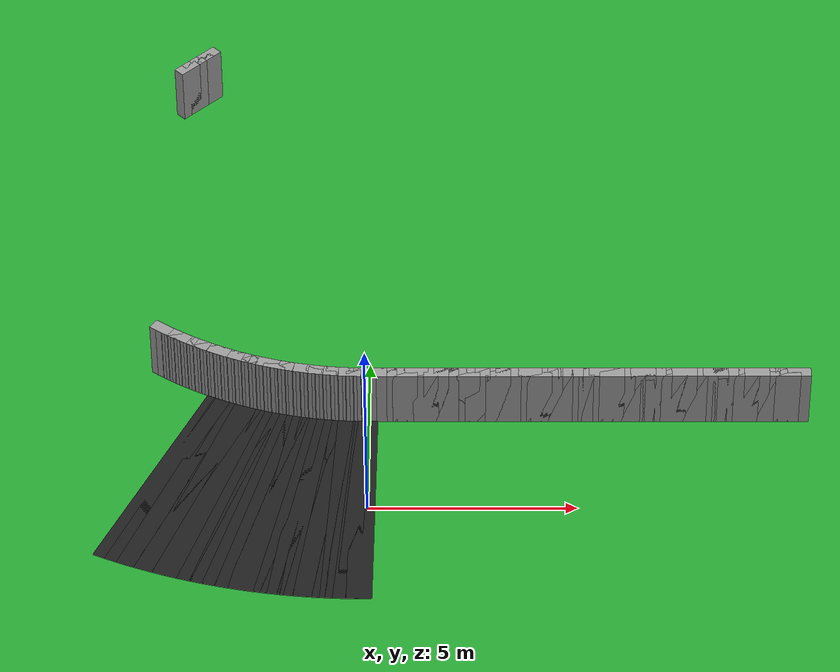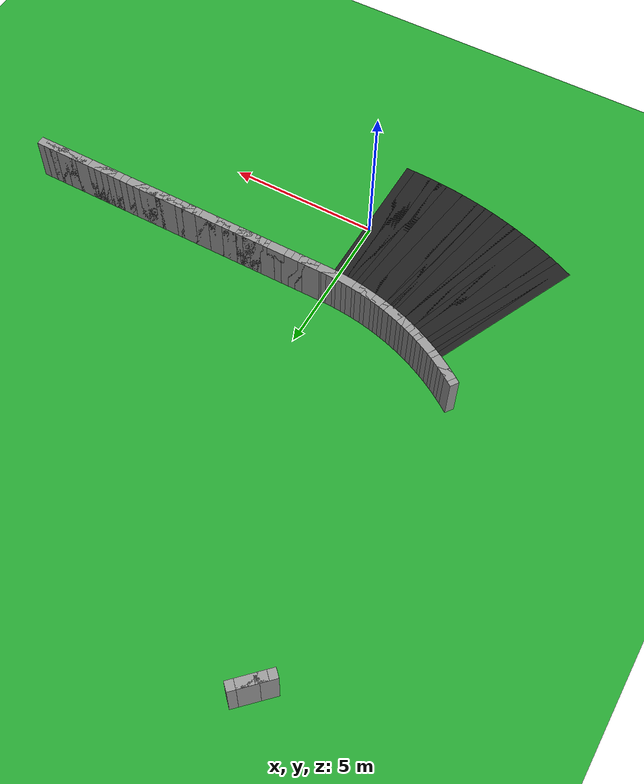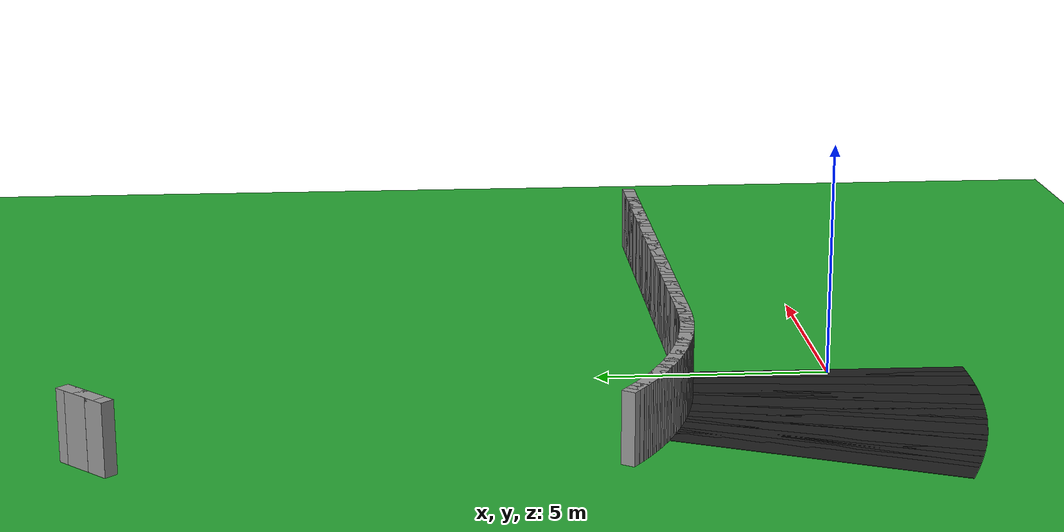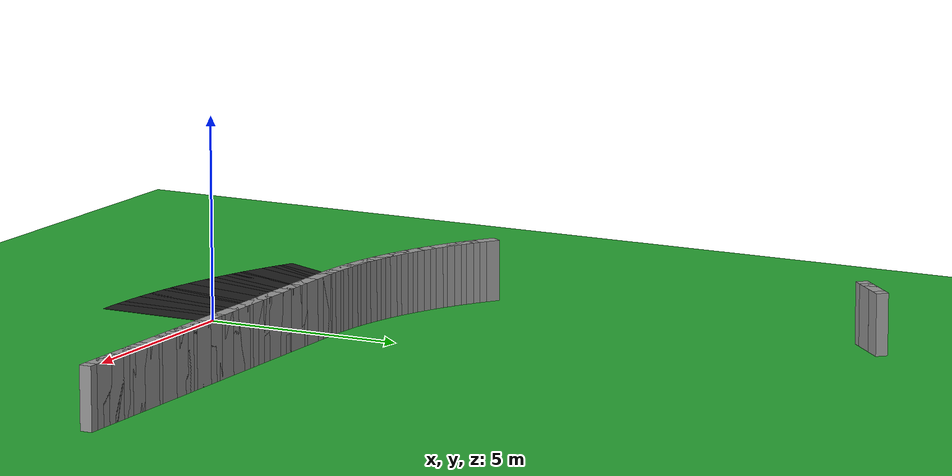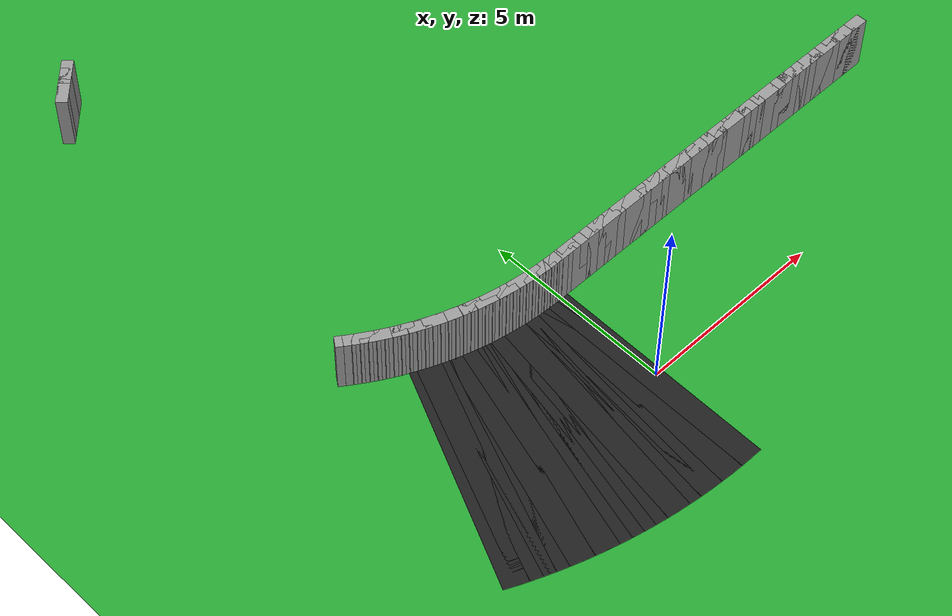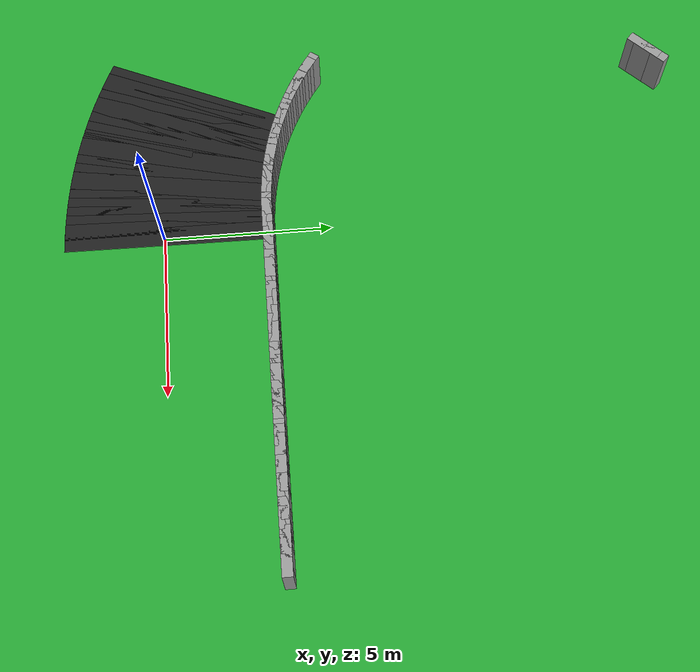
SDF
<sdf version="1.6">
 <world name="obstacle_asymturn">
  <include><uri>model://sun</uri></include>
  <model name="ground_plane">
   <static>true</static>
   <link name="link">
    <collision name="collision">
     <surface><friction><ode><mu>100</mu><mu2>50</mu2></ode></friction></surface>
     <geometry><plane><normal>0 0 1</normal><size>120 120</size></plane></geometry>
    </collision>
    <visual name="visual">
     <geometry><plane><normal>0 0 1</normal><size>120 120</size></plane></geometry>
     <material>
      <script><uri>file://media/materials/scripts/gazebo.material</uri><name>Gazebo/Green</name></script>
     </material>
    </visual>
   </link>
  </model>
  <model name="curbL_0">
   <static>true</static>
   <pose>0.125 3.150 0.750 0 0 0.00000</pose>
   <link name="link">
    <collision name="collision"><geometry><box><size>0.610 0.300 1.500</size></box></geometry></collision>
    <visual name="visual">
     <geometry><box><size>0.610 0.300 1.500</size></box></geometry>
     <material>
      <script><uri>file://media/materials/scripts/gazebo.material</uri><name>Gazebo/Grey</name></script>
     </material>
    </visual>
   </link>
  </model>
  <model name="curbL_1">
   <static>true</static>
   <pose>0.375 3.150 0.750 0 0 0.00000</pose>
   <link name="link">
    <collision name="collision"><geometry><box><size>0.610 0.300 1.500</size></box></geometry></collision>
    <visual name="visual">
     <geometry><box><size>0.610 0.300 1.500</size></box></geometry>
     <material>
      <script><uri>file://media/materials/scripts/gazebo.material</uri><name>Gazebo/Grey</name></script>
     </material>
    </visual>
   </link>
  </model>
  <model name="curbL_2">
   <static>true</static>
   <pose>0.625 3.150 0.750 0 0 0.00000</pose>
   <link name="link">
    <collision name="collision"><geometry><box><size>0.610 0.300 1.500</size></box></geometry></collision>
    <visual name="visual">
     <geometry><box><size>0.610 0.300 1.500</size></box></geometry>
     <material>
      <script><uri>file://media/materials/scripts/gazebo.material</uri><name>Gazebo/Grey</name></script>
     </material>
    </visual>
   </link>
  </model>
  <model name="curbL_3">
   <static>true</static>
   <pose>0.875 3.150 0.750 0 0 0.00000</pose>
   <link name="link">
    <collision name="collision"><geometry><box><size>0.610 0.300 1.500</size></box></geometry></collision>
    <visual name="visual">
     <geometry><box><size>0.610 0.300 1.500</size></box></geometry>
     <material>
      <script><uri>file://media/materials/scripts/gazebo.material</uri><name>Gazebo/Grey</name></script>
     </material>
    </visual>
   </link>
  </model>
  <model name="curbL_4">
   <static>true</static>
   <pose>1.125 3.150 0.750 0 0 0.00000</pose>
   <link name="link">
    <collision name="collision"><geometry><box><size>0.610 0.300 1.500</size></box></geometry></collision>
    <visual name="visual">
     <geometry><box><size>0.610 0.300 1.500</size></box></geometry>
     <material>
      <script><uri>file://media/materials/scripts/gazebo.material</uri><name>Gazebo/Grey</name></script>
     </material>
    </visual>
   </link>
  </model>
  <model name="curbL_5">
   <static>true</static>
   <pose>1.375 3.150 0.750 0 0 0.00000</pose>
   <link name="link">
    <collision name="collision"><geometry><box><size>0.610 0.300 1.500</size></box></geometry></collision>
    <visual name="visual">
     <geometry><box><size>0.610 0.300 1.500</size></box></geometry>
     <material>
      <script><uri>file://media/materials/scripts/gazebo.material</uri><name>Gazebo/Grey</name></script>
     </material>
    </visual>
   </link>
  </model>
  <model name="curbL_6">
   <static>true</static>
   <pose>1.625 3.150 0.750 0 0 0.00000</pose>
   <link name="link">
    <collision name="collision"><geometry><box><size>0.610 0.300 1.500</size></box></geometry></collision>
    <visual name="visual">
     <geometry><box><size>0.610 0.300 1.500</size></box></geometry>
     <material>
      <script><uri>file://media/materials/scripts/gazebo.material</uri><name>Gazebo/Grey</name></script>
     </material>
    </visual>
   </link>
  </model>
  <model name="curbL_7">
   <static>true</static>
   <pose>1.875 3.150 0.750 0 0 0.00000</pose>
   <link name="link">
    <collision name="collision"><geometry><box><size>0.610 0.300 1.500</size></box></geometry></collision>
    <visual name="visual">
     <geometry><box><size>0.610 0.300 1.500</size></box></geometry>
     <material>
      <script><uri>file://media/materials/scripts/gazebo.material</uri><name>Gazebo/Grey</name></script>
     </material>
    </visual>
   </link>
  </model>
  <model name="curbL_8">
   <static>true</static>
   <pose>2.125 3.150 0.750 0 0 0.00000</pose>
   <link name="link">
    <collision name="collision"><geometry><box><size>0.610 0.300 1.500</size></box></geometry></collision>
    <visual name="visual">
     <geometry><box><size>0.610 0.300 1.500</size></box></geometry>
     <material>
      <script><uri>file://media/materials/scripts/gazebo.material</uri><name>Gazebo/Grey</name></script>
     </material>
    </visual>
   </link>
  </model>
  <model name="curbL_9">
   <static>true</static>
   <pose>2.375 3.150 0.750 0 0 0.00000</pose>
   <link name="link">
    <collision name="collision"><geometry><box><size>0.610 0.300 1.500</size></box></geometry></collision>
    <visual name="visual">
     <geometry><box><size>0.610 0.300 1.500</size></box></geometry>
     <material>
      <script><uri>file://media/materials/scripts/gazebo.material</uri><name>Gazebo/Grey</name></script>
     </material>
    </visual>
   </link>
  </model>
  <model name="curbL_10">
   <static>true</static>
   <pose>2.625 3.150 0.750 0 0 0.00000</pose>
   <link name="link">
    <collision name="collision"><geometry><box><size>0.610 0.300 1.500</size></box></geometry></collision>
    <visual name="visual">
     <geometry><box><size>0.610 0.300 1.500</size></box></geometry>
     <material>
      <script><uri>file://media/materials/scripts/gazebo.material</uri><name>Gazebo/Grey</name></script>
     </material>
    </visual>
   </link>
  </model>
  <model name="curbL_11">
   <static>true</static>
   <pose>2.875 3.150 0.750 0 0 0.00000</pose>
   <link name="link">
    <collision name="collision"><geometry><box><size>0.610 0.300 1.500</size></box></geometry></collision>
    <visual name="visual">
     <geometry><box><size>0.610 0.300 1.500</size></box></geometry>
     <material>
      <script><uri>file://media/materials/scripts/gazebo.material</uri><name>Gazebo/Grey</name></script>
     </material>
    </visual>
   </link>
  </model>
  <model name="curbL_12">
   <static>true</static>
   <pose>3.125 3.150 0.750 0 0 0.00000</pose>
   <link name="link">
    <collision name="collision"><geometry><box><size>0.610 0.300 1.500</size></box></geometry></collision>
    <visual name="visual">
     <geometry><box><size>0.610 0.300 1.500</size></box></geometry>
     <material>
      <script><uri>file://media/materials/scripts/gazebo.material</uri><name>Gazebo/Grey</name></script>
     </material>
    </visual>
   </link>
  </model>
  <model name="curbL_13">
   <static>true</static>
   <pose>3.375 3.150 0.750 0 0 0.00000</pose>
   <link name="link">
    <collision name="collision"><geometry><box><size>0.610 0.300 1.500</size></box></geometry></collision>
    <visual name="visual">
     <geometry><box><size>0.610 0.300 1.500</size></box></geometry>
     <material>
      <script><uri>file://media/materials/scripts/gazebo.material</uri><name>Gazebo/Grey</name></script>
     </material>
    </visual>
   </link>
  </model>
  <model name="curbL_14">
   <static>true</static>
   <pose>3.625 3.150 0.750 0 0 0.00000</pose>
   <link name="link">
    <collision name="collision"><geometry><box><size>0.610 0.300 1.500</size></box></geometry></collision>
    <visual name="visual">
     <geometry><box><size>0.610 0.300 1.500</size></box></geometry>
     <material>
      <script><uri>file://media/materials/scripts/gazebo.material</uri><name>Gazebo/Grey</name></script>
     </material>
    </visual>
   </link>
  </model>
  <model name="curbL_15">
   <static>true</static>
   <pose>3.875 3.150 0.750 0 0 0.00000</pose>
   <link name="link">
    <collision name="collision"><geometry><box><size>0.610 0.300 1.500</size></box></geometry></collision>
    <visual name="visual">
     <geometry><box><size>0.610 0.300 1.500</size></box></geometry>
     <material>
      <script><uri>file://media/materials/scripts/gazebo.material</uri><name>Gazebo/Grey</name></script>
     </material>
    </visual>
   </link>
  </model>
  <model name="curbL_16">
   <static>true</static>
   <pose>4.125 3.150 0.750 0 0 0.00000</pose>
   <link name="link">
    <collision name="collision"><geometry><box><size>0.610 0.300 1.500</size></box></geometry></collision>
    <visual name="visual">
     <geometry><box><size>0.610 0.300 1.500</size></box></geometry>
     <material>
      <script><uri>file://media/materials/scripts/gazebo.material</uri><name>Gazebo/Grey</name></script>
     </material>
    </visual>
   </link>
  </model>
  <model name="curbL_17">
   <static>true</static>
   <pose>4.375 3.150 0.750 0 0 0.00000</pose>
   <link name="link">
    <collision name="collision"><geometry><box><size>0.610 0.300 1.500</size></box></geometry></collision>
    <visual name="visual">
     <geometry><box><size>0.610 0.300 1.500</size></box></geometry>
     <material>
      <script><uri>file://media/materials/scripts/gazebo.material</uri><name>Gazebo/Grey</name></script>
     </material>
    </visual>
   </link>
  </model>
  <model name="curbL_18">
   <static>true</static>
   <pose>4.625 3.150 0.750 0 0 0.00000</pose>
   <link name="link">
    <collision name="collision"><geometry><box><size>0.610 0.300 1.500</size></box></geometry></collision>
    <visual name="visual">
     <geometry><box><size>0.610 0.300 1.500</size></box></geometry>
     <material>
      <script><uri>file://media/materials/scripts/gazebo.material</uri><name>Gazebo/Grey</name></script>
     </material>
    </visual>
   </link>
  </model>
  <model name="curbL_19">
   <static>true</static>
   <pose>4.875 3.150 0.750 0 0 0.00000</pose>
   <link name="link">
    <collision name="collision"><geometry><box><size>0.610 0.300 1.500</size></box></geometry></collision>
    <visual name="visual">
     <geometry><box><size>0.610 0.300 1.500</size></box></geometry>
     <material>
      <script><uri>file://media/materials/scripts/gazebo.material</uri><name>Gazebo/Grey</name></script>
     </material>
    </visual>
   </link>
  </model>
  <model name="curbL_20">
   <static>true</static>
   <pose>5.125 3.150 0.750 0 0 0.00000</pose>
   <link name="link">
    <collision name="collision"><geometry><box><size>0.610 0.300 1.500</size></box></geometry></collision>
    <visual name="visual">
     <geometry><box><size>0.610 0.300 1.500</size></box></geometry>
     <material>
      <script><uri>file://media/materials/scripts/gazebo.material</uri><name>Gazebo/Grey</name></script>
     </material>
    </visual>
   </link>
  </model>
  <model name="curbL_21">
   <static>true</static>
   <pose>5.375 3.150 0.750 0 0 0.00000</pose>
   <link name="link">
    <collision name="collision"><geometry><box><size>0.610 0.300 1.500</size></box></geometry></collision>
    <visual name="visual">
     <geometry><box><size>0.610 0.300 1.500</size></box></geometry>
     <material>
      <script><uri>file://media/materials/scripts/gazebo.material</uri><name>Gazebo/Grey</name></script>
     </material>
    </visual>
   </link>
  </model>
  <model name="curbL_22">
   <static>true</static>
   <pose>5.625 3.150 0.750 0 0 0.00000</pose>
   <link name="link">
    <collision name="collision"><geometry><box><size>0.610 0.300 1.500</size></box></geometry></collision>
    <visual name="visual">
     <geometry><box><size>0.610 0.300 1.500</size></box></geometry>
     <material>
      <script><uri>file://media/materials/scripts/gazebo.material</uri><name>Gazebo/Grey</name></script>
     </material>
    </visual>
   </link>
  </model>
  <model name="curbL_23">
   <static>true</static>
   <pose>5.875 3.150 0.750 0 0 0.00000</pose>
   <link name="link">
    <collision name="collision"><geometry><box><size>0.610 0.300 1.500</size></box></geometry></collision>
    <visual name="visual">
     <geometry><box><size>0.610 0.300 1.500</size></box></geometry>
     <material>
      <script><uri>file://media/materials/scripts/gazebo.material</uri><name>Gazebo/Grey</name></script>
     </material>
    </visual>
   </link>
  </model>
  <model name="curbL_24">
   <static>true</static>
   <pose>6.125 3.150 0.750 0 0 0.00000</pose>
   <link name="link">
    <collision name="collision"><geometry><box><size>0.610 0.300 1.500</size></box></geometry></collision>
    <visual name="visual">
     <geometry><box><size>0.610 0.300 1.500</size></box></geometry>
     <material>
      <script><uri>file://media/materials/scripts/gazebo.material</uri><name>Gazebo/Grey</name></script>
     </material>
    </visual>
   </link>
  </model>
  <model name="curbL_25">
   <static>true</static>
   <pose>6.375 3.150 0.750 0 0 0.00000</pose>
   <link name="link">
    <collision name="collision"><geometry><box><size>0.610 0.300 1.500</size></box></geometry></collision>
    <visual name="visual">
     <geometry><box><size>0.610 0.300 1.500</size></box></geometry>
     <material>
      <script><uri>file://media/materials/scripts/gazebo.material</uri><name>Gazebo/Grey</name></script>
     </material>
    </visual>
   </link>
  </model>
  <model name="curbL_26">
   <static>true</static>
   <pose>6.625 3.150 0.750 0 0 0.00000</pose>
   <link name="link">
    <collision name="collision"><geometry><box><size>0.610 0.300 1.500</size></box></geometry></collision>
    <visual name="visual">
     <geometry><box><size>0.610 0.300 1.500</size></box></geometry>
     <material>
      <script><uri>file://media/materials/scripts/gazebo.material</uri><name>Gazebo/Grey</name></script>
     </material>
    </visual>
   </link>
  </model>
  <model name="curbL_27">
   <static>true</static>
   <pose>6.875 3.150 0.750 0 0 0.00000</pose>
   <link name="link">
    <collision name="collision"><geometry><box><size>0.610 0.300 1.500</size></box></geometry></collision>
    <visual name="visual">
     <geometry><box><size>0.610 0.300 1.500</size></box></geometry>
     <material>
      <script><uri>file://media/materials/scripts/gazebo.material</uri><name>Gazebo/Grey</name></script>
     </material>
    </visual>
   </link>
  </model>
  <model name="curbL_28">
   <static>true</static>
   <pose>7.125 3.150 0.750 0 0 0.00000</pose>
   <link name="link">
    <collision name="collision"><geometry><box><size>0.610 0.300 1.500</size></box></geometry></collision>
    <visual name="visual">
     <geometry><box><size>0.610 0.300 1.500</size></box></geometry>
     <material>
      <script><uri>file://media/materials/scripts/gazebo.material</uri><name>Gazebo/Grey</name></script>
     </material>
    </visual>
   </link>
  </model>
  <model name="curbL_29">
   <static>true</static>
   <pose>7.375 3.150 0.750 0 0 0.00000</pose>
   <link name="link">
    <collision name="collision"><geometry><box><size>0.610 0.300 1.500</size></box></geometry></collision>
    <visual name="visual">
     <geometry><box><size>0.610 0.300 1.500</size></box></geometry>
     <material>
      <script><uri>file://media/materials/scripts/gazebo.material</uri><name>Gazebo/Grey</name></script>
     </material>
    </visual>
   </link>
  </model>
  <model name="curbL_30">
   <static>true</static>
   <pose>7.625 3.150 0.750 0 0 0.00000</pose>
   <link name="link">
    <collision name="collision"><geometry><box><size>0.610 0.300 1.500</size></box></geometry></collision>
    <visual name="visual">
     <geometry><box><size>0.610 0.300 1.500</size></box></geometry>
     <material>
      <script><uri>file://media/materials/scripts/gazebo.material</uri><name>Gazebo/Grey</name></script>
     </material>
    </visual>
   </link>
  </model>
  <model name="curbL_31">
   <static>true</static>
   <pose>7.875 3.150 0.750 0 0 0.00000</pose>
   <link name="link">
    <collision name="collision"><geometry><box><size>0.610 0.300 1.500</size></box></geometry></collision>
    <visual name="visual">
     <geometry><box><size>0.610 0.300 1.500</size></box></geometry>
     <material>
      <script><uri>file://media/materials/scripts/gazebo.material</uri><name>Gazebo/Grey</name></script>
     </material>
    </visual>
   </link>
  </model>
  <model name="curbL_32">
   <static>true</static>
   <pose>8.125 3.150 0.750 0 0 0.00000</pose>
   <link name="link">
    <collision name="collision"><geometry><box><size>0.610 0.300 1.500</size></box></geometry></collision>
    <visual name="visual">
     <geometry><box><size>0.610 0.300 1.500</size></box></geometry>
     <material>
      <script><uri>file://media/materials/scripts/gazebo.material</uri><name>Gazebo/Grey</name></script>
     </material>
    </visual>
   </link>
  </model>
  <model name="curbL_33">
   <static>true</static>
   <pose>8.375 3.150 0.750 0 0 0.00000</pose>
   <link name="link">
    <collision name="collision"><geometry><box><size>0.610 0.300 1.500</size></box></geometry></collision>
    <visual name="visual">
     <geometry><box><size>0.610 0.300 1.500</size></box></geometry>
     <material>
      <script><uri>file://media/materials/scripts/gazebo.material</uri><name>Gazebo/Grey</name></script>
     </material>
    </visual>
   </link>
  </model>
  <model name="curbL_34">
   <static>true</static>
   <pose>8.625 3.150 0.750 0 0 0.00000</pose>
   <link name="link">
    <collision name="collision"><geometry><box><size>0.610 0.300 1.500</size></box></geometry></collision>
    <visual name="visual">
     <geometry><box><size>0.610 0.300 1.500</size></box></geometry>
     <material>
      <script><uri>file://media/materials/scripts/gazebo.material</uri><name>Gazebo/Grey</name></script>
     </material>
    </visual>
   </link>
  </model>
  <model name="curbL_35">
   <static>true</static>
   <pose>8.875 3.150 0.750 0 0 0.00000</pose>
   <link name="link">
    <collision name="collision"><geometry><box><size>0.610 0.300 1.500</size></box></geometry></collision>
    <visual name="visual">
     <geometry><box><size>0.610 0.300 1.500</size></box></geometry>
     <material>
      <script><uri>file://media/materials/scripts/gazebo.material</uri><name>Gazebo/Grey</name></script>
     </material>
    </visual>
   </link>
  </model>
  <model name="curbL_36">
   <static>true</static>
   <pose>9.125 3.150 0.750 0 0 0.00000</pose>
   <link name="link">
    <collision name="collision"><geometry><box><size>0.610 0.300 1.500</size></box></geometry></collision>
    <visual name="visual">
     <geometry><box><size>0.610 0.300 1.500</size></box></geometry>
     <material>
      <script><uri>file://media/materials/scripts/gazebo.material</uri><name>Gazebo/Grey</name></script>
     </material>
    </visual>
   </link>
  </model>
  <model name="curbL_37">
   <static>true</static>
   <pose>9.375 3.150 0.750 0 0 0.00000</pose>
   <link name="link">
    <collision name="collision"><geometry><box><size>0.610 0.300 1.500</size></box></geometry></collision>
    <visual name="visual">
     <geometry><box><size>0.610 0.300 1.500</size></box></geometry>
     <material>
      <script><uri>file://media/materials/scripts/gazebo.material</uri><name>Gazebo/Grey</name></script>
     </material>
    </visual>
   </link>
  </model>
  <model name="curbL_38">
   <static>true</static>
   <pose>9.625 3.150 0.750 0 0 0.00000</pose>
   <link name="link">
    <collision name="collision"><geometry><box><size>0.610 0.300 1.500</size></box></geometry></collision>
    <visual name="visual">
     <geometry><box><size>0.610 0.300 1.500</size></box></geometry>
     <material>
      <script><uri>file://media/materials/scripts/gazebo.material</uri><name>Gazebo/Grey</name></script>
     </material>
    </visual>
   </link>
  </model>
  <model name="curbL_39">
   <static>true</static>
   <pose>9.875 3.150 0.750 0 0 0.00000</pose>
   <link name="link">
    <collision name="collision"><geometry><box><size>0.610 0.300 1.500</size></box></geometry></collision>
    <visual name="visual">
     <geometry><box><size>0.610 0.300 1.500</size></box></geometry>
     <material>
      <script><uri>file://media/materials/scripts/gazebo.material</uri><name>Gazebo/Grey</name></script>
     </material>
    </visual>
   </link>
  </model>
  <model name="curbL_40">
   <static>true</static>
   <pose>10.125 3.150 0.750 0 0 0.00000</pose>
   <link name="link">
    <collision name="collision"><geometry><box><size>0.610 0.300 1.500</size></box></geometry></collision>
    <visual name="visual">
     <geometry><box><size>0.610 0.300 1.500</size></box></geometry>
     <material>
      <script><uri>file://media/materials/scripts/gazebo.material</uri><name>Gazebo/Grey</name></script>
     </material>
    </visual>
   </link>
  </model>
  <model name="curbL_41">
   <static>true</static>
   <pose>10.375 3.150 0.750 0 0 0.00000</pose>
   <link name="link">
    <collision name="collision"><geometry><box><size>0.610 0.300 1.500</size></box></geometry></collision>
    <visual name="visual">
     <geometry><box><size>0.610 0.300 1.500</size></box></geometry>
     <material>
      <script><uri>file://media/materials/scripts/gazebo.material</uri><name>Gazebo/Grey</name></script>
     </material>
    </visual>
   </link>
  </model>
  <model name="curbL_376">
   <static>true</static>
   <pose>-4.402 15.449 0.750 0 0 -2.35619</pose>
   <link name="link">
    <collision name="collision"><geometry><box><size>0.610 0.300 1.500</size></box></geometry></collision>
    <visual name="visual">
     <geometry><box><size>0.610 0.300 1.500</size></box></geometry>
     <material>
      <script><uri>file://media/materials/scripts/gazebo.material</uri><name>Gazebo/Grey</name></script>
     </material>
    </visual>
   </link>
  </model>
  <model name="curbL_377">
   <static>true</static>
   <pose>-4.579 15.272 0.750 0 0 -2.35619</pose>
   <link name="link">
    <collision name="collision"><geometry><box><size>0.610 0.300 1.500</size></box></geometry></collision>
    <visual name="visual">
     <geometry><box><size>0.610 0.300 1.500</size></box></geometry>
     <material>
      <script><uri>file://media/materials/scripts/gazebo.material</uri><name>Gazebo/Grey</name></script>
     </material>
    </visual>
   </link>
  </model>
  <model name="curbL_378">
   <static>true</static>
   <pose>-4.755 15.095 0.750 0 0 -2.35619</pose>
   <link name="link">
    <collision name="collision"><geometry><box><size>0.610 0.300 1.500</size></box></geometry></collision>
    <visual name="visual">
     <geometry><box><size>0.610 0.300 1.500</size></box></geometry>
     <material>
      <script><uri>file://media/materials/scripts/gazebo.material</uri><name>Gazebo/Grey</name></script>
     </material>
    </visual>
   </link>
  </model>
  <model name="curbL_379">
   <static>true</static>
   <pose>-4.932 14.918 0.750 0 0 -2.35619</pose>
   <link name="link">
    <collision name="collision"><geometry><box><size>0.610 0.300 1.500</size></box></geometry></collision>
    <visual name="visual">
     <geometry><box><size>0.610 0.300 1.500</size></box></geometry>
     <material>
      <script><uri>file://media/materials/scripts/gazebo.material</uri><name>Gazebo/Grey</name></script>
     </material>
    </visual>
   </link>
  </model>
  <model name="curbL_460">
   <static>true</static>
   <pose>-5.068 4.745 0.750 0 0 -0.60972</pose>
   <link name="link">
    <collision name="collision"><geometry><box><size>0.543 0.300 1.500</size></box></geometry></collision>
    <visual name="visual">
     <geometry><box><size>0.543 0.300 1.500</size></box></geometry>
     <material>
      <script><uri>file://media/materials/scripts/gazebo.material</uri><name>Gazebo/Grey</name></script>
     </material>
    </visual>
   </link>
  </model>
  <model name="curbL_461">
   <static>true</static>
   <pose>-4.917 4.642 0.750 0 0 -0.58905</pose>
   <link name="link">
    <collision name="collision"><geometry><box><size>0.543 0.300 1.500</size></box></geometry></collision>
    <visual name="visual">
     <geometry><box><size>0.543 0.300 1.500</size></box></geometry>
     <material>
      <script><uri>file://media/materials/scripts/gazebo.material</uri><name>Gazebo/Grey</name></script>
     </material>
    </visual>
   </link>
  </model>
  <model name="curbL_462">
   <static>true</static>
   <pose>-4.764 4.542 0.750 0 0 -0.56838</pose>
   <link name="link">
    <collision name="collision"><geometry><box><size>0.543 0.300 1.500</size></box></geometry></collision>
    <visual name="visual">
     <geometry><box><size>0.543 0.300 1.500</size></box></geometry>
     <material>
      <script><uri>file://media/materials/scripts/gazebo.material</uri><name>Gazebo/Grey</name></script>
     </material>
    </visual>
   </link>
  </model>
  <model name="curbL_463">
   <static>true</static>
   <pose>-4.608 4.445 0.750 0 0 -0.54771</pose>
   <link name="link">
    <collision name="collision"><geometry><box><size>0.543 0.300 1.500</size></box></geometry></collision>
    <visual name="visual">
     <geometry><box><size>0.543 0.300 1.500</size></box></geometry>
     <material>
      <script><uri>file://media/materials/scripts/gazebo.material</uri><name>Gazebo/Grey</name></script>
     </material>
    </visual>
   </link>
  </model>
  <model name="curbL_464">
   <static>true</static>
   <pose>-4.451 4.351 0.750 0 0 -0.52704</pose>
   <link name="link">
    <collision name="collision"><geometry><box><size>0.543 0.300 1.500</size></box></geometry></collision>
    <visual name="visual">
     <geometry><box><size>0.543 0.300 1.500</size></box></geometry>
     <material>
      <script><uri>file://media/materials/scripts/gazebo.material</uri><name>Gazebo/Grey</name></script>
     </material>
    </visual>
   </link>
  </model>
  <model name="curbL_465">
   <static>true</static>
   <pose>-4.292 4.261 0.750 0 0 -0.50638</pose>
   <link name="link">
    <collision name="collision"><geometry><box><size>0.543 0.300 1.500</size></box></geometry></collision>
    <visual name="visual">
     <geometry><box><size>0.543 0.300 1.500</size></box></geometry>
     <material>
      <script><uri>file://media/materials/scripts/gazebo.material</uri><name>Gazebo/Grey</name></script>
     </material>
    </visual>
   </link>
  </model>
  <model name="curbL_466">
   <static>true</static>
   <pose>-4.131 4.174 0.750 0 0 -0.48571</pose>
   <link name="link">
    <collision name="collision"><geometry><box><size>0.543 0.300 1.500</size></box></geometry></collision>
    <visual name="visual">
     <geometry><box><size>0.543 0.300 1.500</size></box></geometry>
     <material>
      <script><uri>file://media/materials/scripts/gazebo.material</uri><name>Gazebo/Grey</name></script>
     </material>
    </visual>
   </link>
  </model>
  <model name="curbL_467">
   <static>true</static>
   <pose>-3.969 4.090 0.750 0 0 -0.46504</pose>
   <link name="link">
    <collision name="collision"><geometry><box><size>0.543 0.300 1.500</size></box></geometry></collision>
    <visual name="visual">
     <geometry><box><size>0.543 0.300 1.500</size></box></geometry>
     <material>
      <script><uri>file://media/materials/scripts/gazebo.material</uri><name>Gazebo/Grey</name></script>
     </material>
    </visual>
   </link>
  </model>
  <model name="curbL_468">
   <static>true</static>
   <pose>-3.804 4.010 0.750 0 0 -0.44437</pose>
   <link name="link">
    <collision name="collision"><geometry><box><size>0.543 0.300 1.500</size></box></geometry></collision>
    <visual name="visual">
     <geometry><box><size>0.543 0.300 1.500</size></box></geometry>
     <material>
      <script><uri>file://media/materials/scripts/gazebo.material</uri><name>Gazebo/Grey</name></script>
     </material>
    </visual>
   </link>
  </model>
  <model name="asphalt_469">
   <static>true</static>
   <pose>-4.933 1.062 0.005 0 0 -0.42370</pose>
   <link name="link">
    <visual name="visual">
     <geometry><box><size>0.608 6.000 0.010</size></box></geometry>
     <material>
      <script><uri>file://media/materials/scripts/gazebo.material</uri><name>Gazebo/Black</name></script>
     </material>
    </visual>
   </link>
  </model>
  <model name="curbL_469">
   <static>true</static>
   <pose>-3.638 3.933 0.750 0 0 -0.42370</pose>
   <link name="link">
    <collision name="collision"><geometry><box><size>0.543 0.300 1.500</size></box></geometry></collision>
    <visual name="visual">
     <geometry><box><size>0.543 0.300 1.500</size></box></geometry>
     <material>
      <script><uri>file://media/materials/scripts/gazebo.material</uri><name>Gazebo/Grey</name></script>
     </material>
    </visual>
   </link>
  </model>
  <model name="asphalt_470">
   <static>true</static>
   <pose>-4.706 0.962 0.005 0 0 -0.40303</pose>
   <link name="link">
    <visual name="visual">
     <geometry><box><size>0.608 6.000 0.010</size></box></geometry>
     <material>
      <script><uri>file://media/materials/scripts/gazebo.material</uri><name>Gazebo/Black</name></script>
     </material>
    </visual>
   </link>
  </model>
  <model name="curbL_470">
   <static>true</static>
   <pose>-3.471 3.860 0.750 0 0 -0.40303</pose>
   <link name="link">
    <collision name="collision"><geometry><box><size>0.543 0.300 1.500</size></box></geometry></collision>
    <visual name="visual">
     <geometry><box><size>0.543 0.300 1.500</size></box></geometry>
     <material>
      <script><uri>file://media/materials/scripts/gazebo.material</uri><name>Gazebo/Grey</name></script>
     </material>
    </visual>
   </link>
  </model>
  <model name="asphalt_471">
   <static>true</static>
   <pose>-4.477 0.867 0.005 0 0 -0.38236</pose>
   <link name="link">
    <visual name="visual">
     <geometry><box><size>0.608 6.000 0.010</size></box></geometry>
     <material>
      <script><uri>file://media/materials/scripts/gazebo.material</uri><name>Gazebo/Black</name></script>
     </material>
    </visual>
   </link>
  </model>
  <model name="curbL_471">
   <static>true</static>
   <pose>-3.302 3.790 0.750 0 0 -0.38236</pose>
   <link name="link">
    <collision name="collision"><geometry><box><size>0.543 0.300 1.500</size></box></geometry></collision>
    <visual name="visual">
     <geometry><box><size>0.543 0.300 1.500</size></box></geometry>
     <material>
      <script><uri>file://media/materials/scripts/gazebo.material</uri><name>Gazebo/Grey</name></script>
     </material>
    </visual>
   </link>
  </model>
  <model name="asphalt_472">
   <static>true</static>
   <pose>-4.246 0.777 0.005 0 0 -0.36170</pose>
   <link name="link">
    <visual name="visual">
     <geometry><box><size>0.608 6.000 0.010</size></box></geometry>
     <material>
      <script><uri>file://media/materials/scripts/gazebo.material</uri><name>Gazebo/Black</name></script>
     </material>
    </visual>
   </link>
  </model>
  <model name="curbL_472">
   <static>true</static>
   <pose>-3.132 3.723 0.750 0 0 -0.36170</pose>
   <link name="link">
    <collision name="collision"><geometry><box><size>0.543 0.300 1.500</size></box></geometry></collision>
    <visual name="visual">
     <geometry><box><size>0.543 0.300 1.500</size></box></geometry>
     <material>
      <script><uri>file://media/materials/scripts/gazebo.material</uri><name>Gazebo/Grey</name></script>
     </material>
    </visual>
   </link>
  </model>
  <model name="asphalt_473">
   <static>true</static>
   <pose>-4.013 0.692 0.005 0 0 -0.34103</pose>
   <link name="link">
    <visual name="visual">
     <geometry><box><size>0.608 6.000 0.010</size></box></geometry>
     <material>
      <script><uri>file://media/materials/scripts/gazebo.material</uri><name>Gazebo/Black</name></script>
     </material>
    </visual>
   </link>
  </model>
  <model name="curbL_473">
   <static>true</static>
   <pose>-2.960 3.660 0.750 0 0 -0.34103</pose>
   <link name="link">
    <collision name="collision"><geometry><box><size>0.543 0.300 1.500</size></box></geometry></collision>
    <visual name="visual">
     <geometry><box><size>0.543 0.300 1.500</size></box></geometry>
     <material>
      <script><uri>file://media/materials/scripts/gazebo.material</uri><name>Gazebo/Grey</name></script>
     </material>
    </visual>
   </link>
  </model>
  <model name="asphalt_474">
   <static>true</static>
   <pose>-3.779 0.611 0.005 0 0 -0.32036</pose>
   <link name="link">
    <visual name="visual">
     <geometry><box><size>0.608 6.000 0.010</size></box></geometry>
     <material>
      <script><uri>file://media/materials/scripts/gazebo.material</uri><name>Gazebo/Black</name></script>
     </material>
    </visual>
   </link>
  </model>
  <model name="curbL_474">
   <static>true</static>
   <pose>-2.787 3.601 0.750 0 0 -0.32036</pose>
   <link name="link">
    <collision name="collision"><geometry><box><size>0.543 0.300 1.500</size></box></geometry></collision>
    <visual name="visual">
     <geometry><box><size>0.543 0.300 1.500</size></box></geometry>
     <material>
      <script><uri>file://media/materials/scripts/gazebo.material</uri><name>Gazebo/Grey</name></script>
     </material>
    </visual>
   </link>
  </model>
  <model name="asphalt_475">
   <static>true</static>
   <pose>-3.543 0.535 0.005 0 0 -0.29969</pose>
   <link name="link">
    <visual name="visual">
     <geometry><box><size>0.608 6.000 0.010</size></box></geometry>
     <material>
      <script><uri>file://media/materials/scripts/gazebo.material</uri><name>Gazebo/Black</name></script>
     </material>
    </visual>
   </link>
  </model>
  <model name="curbL_475">
   <static>true</static>
   <pose>-2.613 3.545 0.750 0 0 -0.29969</pose>
   <link name="link">
    <collision name="collision"><geometry><box><size>0.543 0.300 1.500</size></box></geometry></collision>
    <visual name="visual">
     <geometry><box><size>0.543 0.300 1.500</size></box></geometry>
     <material>
      <script><uri>file://media/materials/scripts/gazebo.material</uri><name>Gazebo/Grey</name></script>
     </material>
    </visual>
   </link>
  </model>
  <model name="asphalt_476">
   <static>true</static>
   <pose>-3.305 0.465 0.005 0 0 -0.27902</pose>
   <link name="link">
    <visual name="visual">
     <geometry><box><size>0.608 6.000 0.010</size></box></geometry>
     <material>
      <script><uri>file://media/materials/scripts/gazebo.material</uri><name>Gazebo/Black</name></script>
     </material>
    </visual>
   </link>
  </model>
  <model name="curbL_476">
   <static>true</static>
   <pose>-2.437 3.493 0.750 0 0 -0.27902</pose>
   <link name="link">
    <collision name="collision"><geometry><box><size>0.543 0.300 1.500</size></box></geometry></collision>
    <visual name="visual">
     <geometry><box><size>0.543 0.300 1.500</size></box></geometry>
     <material>
      <script><uri>file://media/materials/scripts/gazebo.material</uri><name>Gazebo/Grey</name></script>
     </material>
    </visual>
   </link>
  </model>
  <model name="asphalt_477">
   <static>true</static>
   <pose>-3.066 0.399 0.005 0 0 -0.25835</pose>
   <link name="link">
    <visual name="visual">
     <geometry><box><size>0.608 6.000 0.010</size></box></geometry>
     <material>
      <script><uri>file://media/materials/scripts/gazebo.material</uri><name>Gazebo/Black</name></script>
     </material>
    </visual>
   </link>
  </model>
  <model name="curbL_477">
   <static>true</static>
   <pose>-2.261 3.444 0.750 0 0 -0.25835</pose>
   <link name="link">
    <collision name="collision"><geometry><box><size>0.543 0.300 1.500</size></box></geometry></collision>
    <visual name="visual">
     <geometry><box><size>0.543 0.300 1.500</size></box></geometry>
     <material>
      <script><uri>file://media/materials/scripts/gazebo.material</uri><name>Gazebo/Grey</name></script>
     </material>
    </visual>
   </link>
  </model>
  <model name="asphalt_478">
   <static>true</static>
   <pose>-2.825 0.338 0.005 0 0 -0.23769</pose>
   <link name="link">
    <visual name="visual">
     <geometry><box><size>0.608 6.000 0.010</size></box></geometry>
     <material>
      <script><uri>file://media/materials/scripts/gazebo.material</uri><name>Gazebo/Black</name></script>
     </material>
    </visual>
   </link>
  </model>
  <model name="curbL_478">
   <static>true</static>
   <pose>-2.084 3.399 0.750 0 0 -0.23769</pose>
   <link name="link">
    <collision name="collision"><geometry><box><size>0.543 0.300 1.500</size></box></geometry></collision>
    <visual name="visual">
     <geometry><box><size>0.543 0.300 1.500</size></box></geometry>
     <material>
      <script><uri>file://media/materials/scripts/gazebo.material</uri><name>Gazebo/Grey</name></script>
     </material>
    </visual>
   </link>
  </model>
  <model name="asphalt_479">
   <static>true</static>
   <pose>-2.584 0.282 0.005 0 0 -0.21702</pose>
   <link name="link">
    <visual name="visual">
     <geometry><box><size>0.608 6.000 0.010</size></box></geometry>
     <material>
      <script><uri>file://media/materials/scripts/gazebo.material</uri><name>Gazebo/Black</name></script>
     </material>
    </visual>
   </link>
  </model>
  <model name="curbL_479">
   <static>true</static>
   <pose>-1.906 3.358 0.750 0 0 -0.21702</pose>
   <link name="link">
    <collision name="collision"><geometry><box><size>0.543 0.300 1.500</size></box></geometry></collision>
    <visual name="visual">
     <geometry><box><size>0.543 0.300 1.500</size></box></geometry>
     <material>
      <script><uri>file://media/materials/scripts/gazebo.material</uri><name>Gazebo/Grey</name></script>
     </material>
    </visual>
   </link>
  </model>
  <model name="asphalt_480">
   <static>true</static>
   <pose>-2.341 0.231 0.005 0 0 -0.19635</pose>
   <link name="link">
    <visual name="visual">
     <geometry><box><size>0.608 6.000 0.010</size></box></geometry>
     <material>
      <script><uri>file://media/materials/scripts/gazebo.material</uri><name>Gazebo/Black</name></script>
     </material>
    </visual>
   </link>
  </model>
  <model name="curbL_480">
   <static>true</static>
   <pose>-1.726 3.321 0.750 0 0 -0.19635</pose>
   <link name="link">
    <collision name="collision"><geometry><box><size>0.543 0.300 1.500</size></box></geometry></collision>
    <visual name="visual">
     <geometry><box><size>0.543 0.300 1.500</size></box></geometry>
     <material>
      <script><uri>file://media/materials/scripts/gazebo.material</uri><name>Gazebo/Grey</name></script>
     </material>
    </visual>
   </link>
  </model>
  <model name="asphalt_481">
   <static>true</static>
   <pose>-2.097 0.185 0.005 0 0 -0.17568</pose>
   <link name="link">
    <visual name="visual">
     <geometry><box><size>0.608 6.000 0.010</size></box></geometry>
     <material>
      <script><uri>file://media/materials/scripts/gazebo.material</uri><name>Gazebo/Black</name></script>
     </material>
    </visual>
   </link>
  </model>
  <model name="curbL_481">
   <static>true</static>
   <pose>-1.547 3.287 0.750 0 0 -0.17568</pose>
   <link name="link">
    <collision name="collision"><geometry><box><size>0.543 0.300 1.500</size></box></geometry></collision>
    <visual name="visual">
     <geometry><box><size>0.543 0.300 1.500</size></box></geometry>
     <material>
      <script><uri>file://media/materials/scripts/gazebo.material</uri><name>Gazebo/Grey</name></script>
     </material>
    </visual>
   </link>
  </model>
  <model name="asphalt_482">
   <static>true</static>
   <pose>-1.853 0.145 0.005 0 0 -0.15501</pose>
   <link name="link">
    <visual name="visual">
     <geometry><box><size>0.608 6.000 0.010</size></box></geometry>
     <material>
      <script><uri>file://media/materials/scripts/gazebo.material</uri><name>Gazebo/Black</name></script>
     </material>
    </visual>
   </link>
  </model>
  <model name="curbL_482">
   <static>true</static>
   <pose>-1.366 3.257 0.750 0 0 -0.15501</pose>
   <link name="link">
    <collision name="collision"><geometry><box><size>0.543 0.300 1.500</size></box></geometry></collision>
    <visual name="visual">
     <geometry><box><size>0.543 0.300 1.500</size></box></geometry>
     <material>
      <script><uri>file://media/materials/scripts/gazebo.material</uri><name>Gazebo/Grey</name></script>
     </material>
    </visual>
   </link>
  </model>
  <model name="asphalt_483">
   <static>true</static>
   <pose>-1.607 0.109 0.005 0 0 -0.13434</pose>
   <link name="link">
    <visual name="visual">
     <geometry><box><size>0.608 6.000 0.010</size></box></geometry>
     <material>
      <script><uri>file://media/materials/scripts/gazebo.material</uri><name>Gazebo/Black</name></script>
     </material>
    </visual>
   </link>
  </model>
  <model name="curbL_483">
   <static>true</static>
   <pose>-1.185 3.230 0.750 0 0 -0.13434</pose>
   <link name="link">
    <collision name="collision"><geometry><box><size>0.543 0.300 1.500</size></box></geometry></collision>
    <visual name="visual">
     <geometry><box><size>0.543 0.300 1.500</size></box></geometry>
     <material>
      <script><uri>file://media/materials/scripts/gazebo.material</uri><name>Gazebo/Grey</name></script>
     </material>
    </visual>
   </link>
  </model>
  <model name="asphalt_484">
   <static>true</static>
   <pose>-1.361 0.078 0.005 0 0 -0.11368</pose>
   <link name="link">
    <visual name="visual">
     <geometry><box><size>0.608 6.000 0.010</size></box></geometry>
     <material>
      <script><uri>file://media/materials/scripts/gazebo.material</uri><name>Gazebo/Black</name></script>
     </material>
    </visual>
   </link>
  </model>
  <model name="curbL_484">
   <static>true</static>
   <pose>-1.004 3.208 0.750 0 0 -0.11368</pose>
   <link name="link">
    <collision name="collision"><geometry><box><size>0.543 0.300 1.500</size></box></geometry></collision>
    <visual name="visual">
     <geometry><box><size>0.543 0.300 1.500</size></box></geometry>
     <material>
      <script><uri>file://media/materials/scripts/gazebo.material</uri><name>Gazebo/Grey</name></script>
     </material>
    </visual>
   </link>
  </model>
  <model name="asphalt_485">
   <static>true</static>
   <pose>-1.114 0.053 0.005 0 0 -0.09301</pose>
   <link name="link">
    <visual name="visual">
     <geometry><box><size>0.608 6.000 0.010</size></box></geometry>
     <material>
      <script><uri>file://media/materials/scripts/gazebo.material</uri><name>Gazebo/Black</name></script>
     </material>
    </visual>
   </link>
  </model>
  <model name="curbL_485">
   <static>true</static>
   <pose>-0.822 3.189 0.750 0 0 -0.09301</pose>
   <link name="link">
    <collision name="collision"><geometry><box><size>0.543 0.300 1.500</size></box></geometry></collision>
    <visual name="visual">
     <geometry><box><size>0.543 0.300 1.500</size></box></geometry>
     <material>
      <script><uri>file://media/materials/scripts/gazebo.material</uri><name>Gazebo/Grey</name></script>
     </material>
    </visual>
   </link>
  </model>
  <model name="asphalt_486">
   <static>true</static>
   <pose>-0.867 0.032 0.005 0 0 -0.07234</pose>
   <link name="link">
    <visual name="visual">
     <geometry><box><size>0.608 6.000 0.010</size></box></geometry>
     <material>
      <script><uri>file://media/materials/scripts/gazebo.material</uri><name>Gazebo/Black</name></script>
     </material>
    </visual>
   </link>
  </model>
  <model name="curbL_486">
   <static>true</static>
   <pose>-0.640 3.174 0.750 0 0 -0.07234</pose>
   <link name="link">
    <collision name="collision"><geometry><box><size>0.543 0.300 1.500</size></box></geometry></collision>
    <visual name="visual">
     <geometry><box><size>0.543 0.300 1.500</size></box></geometry>
     <material>
      <script><uri>file://media/materials/scripts/gazebo.material</uri><name>Gazebo/Grey</name></script>
     </material>
    </visual>
   </link>
  </model>
  <model name="asphalt_487">
   <static>true</static>
   <pose>-0.620 0.017 0.005 0 0 -0.05167</pose>
   <link name="link">
    <visual name="visual">
     <geometry><box><size>0.608 6.000 0.010</size></box></geometry>
     <material>
      <script><uri>file://media/materials/scripts/gazebo.material</uri><name>Gazebo/Black</name></script>
     </material>
    </visual>
   </link>
  </model>
  <model name="curbL_487">
   <static>true</static>
   <pose>-0.457 3.162 0.750 0 0 -0.05167</pose>
   <link name="link">
    <collision name="collision"><geometry><box><size>0.543 0.300 1.500</size></box></geometry></collision>
    <visual name="visual">
     <geometry><box><size>0.543 0.300 1.500</size></box></geometry>
     <material>
      <script><uri>file://media/materials/scripts/gazebo.material</uri><name>Gazebo/Grey</name></script>
     </material>
    </visual>
   </link>
  </model>
  <model name="asphalt_488">
   <static>true</static>
   <pose>-0.372 0.006 0.005 0 0 -0.03100</pose>
   <link name="link">
    <visual name="visual">
     <geometry><box><size>0.608 6.000 0.010</size></box></geometry>
     <material>
      <script><uri>file://media/materials/scripts/gazebo.material</uri><name>Gazebo/Black</name></script>
     </material>
    </visual>
   </link>
  </model>
  <model name="curbL_488">
   <static>true</static>
   <pose>-0.274 3.155 0.750 0 0 -0.03100</pose>
   <link name="link">
    <collision name="collision"><geometry><box><size>0.543 0.300 1.500</size></box></geometry></collision>
    <visual name="visual">
     <geometry><box><size>0.543 0.300 1.500</size></box></geometry>
     <material>
      <script><uri>file://media/materials/scripts/gazebo.material</uri><name>Gazebo/Grey</name></script>
     </material>
    </visual>
   </link>
  </model>
  <model name="asphalt_489">
   <static>true</static>
   <pose>-0.124 0.001 0.005 0 0 -0.01033</pose>
   <link name="link">
    <visual name="visual">
     <geometry><box><size>0.608 6.000 0.010</size></box></geometry>
     <material>
      <script><uri>file://media/materials/scripts/gazebo.material</uri><name>Gazebo/Black</name></script>
     </material>
    </visual>
   </link>
  </model>
  <model name="curbL_489">
   <static>true</static>
   <pose>-0.091 3.151 0.750 0 0 -0.01033</pose>
   <link name="link">
    <collision name="collision"><geometry><box><size>0.543 0.300 1.500</size></box></geometry></collision>
    <visual name="visual">
     <geometry><box><size>0.543 0.300 1.500</size></box></geometry>
     <material>
      <script><uri>file://media/materials/scripts/gazebo.material</uri><name>Gazebo/Grey</name></script>
     </material>
    </visual>
   </link>
  </model>
 </world>
</sdf>
